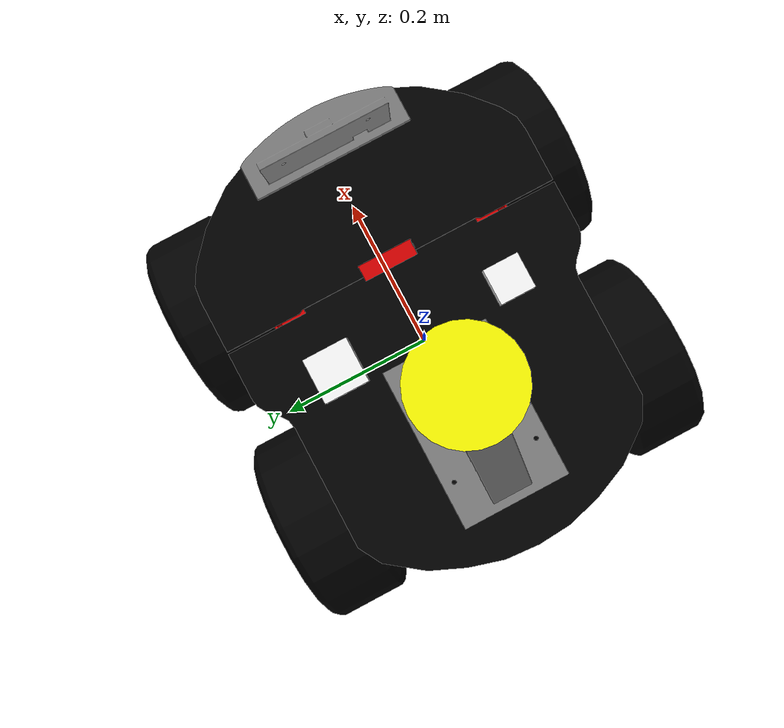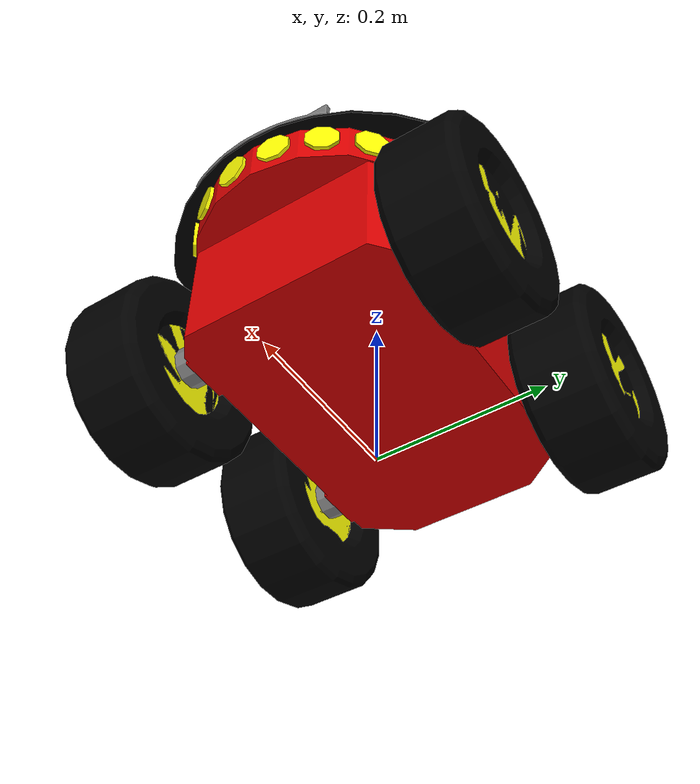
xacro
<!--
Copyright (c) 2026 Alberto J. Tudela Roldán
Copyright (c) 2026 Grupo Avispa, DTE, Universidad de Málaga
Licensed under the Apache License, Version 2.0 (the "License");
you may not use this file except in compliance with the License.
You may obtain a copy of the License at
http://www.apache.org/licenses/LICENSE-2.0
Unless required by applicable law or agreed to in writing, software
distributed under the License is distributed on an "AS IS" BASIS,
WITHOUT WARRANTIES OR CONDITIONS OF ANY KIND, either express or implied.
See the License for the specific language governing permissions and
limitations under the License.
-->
<?xml version="1.0" ?>

<robot name="Pioneer3AT"
  xmlns:xacro="http://ros.org/wiki/xacro">

  <!-- Calibration data -->
  <xacro:include filename="pioneer3at_calibration.xacro" />

  <!-- Robot body definition -->
  <xacro:include filename="pioneer3at_body.xacro"/>

  <!-- Instantiate front wheels -->
  <xacro:p3at_front suffix="left" reflect="1"/>
  <xacro:p3at_front suffix="right" reflect="-1"/>

  <!-- Instantiate back wheels -->
  <xacro:p3at_back suffix="left" reflect="1"/>
  <xacro:p3at_back suffix="right" reflect="-1"/>

</robot>

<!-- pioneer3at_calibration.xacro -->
<robot name="Pioneer3AT"
  xmlns:xacro="http://ros.org/wiki/xacro">

  <!-- Xacro properties -->
  <xacro:property name="base_link_height" value="0.177" />

  <!-- Calibration params -->
  <!-- Footprint -->
  <xacro:property name="footprint_trans_x" value="0.0" />
  <xacro:property name="footprint_trans_y" value="0.0" />
  <xacro:property name="footprint_trans_z" value="0.0" />
  <xacro:property name="footprint_rot_x" value="0.0" />
  <xacro:property name="footprint_rot_y" value="0.0" />
  <xacro:property name="footprint_rot_z" value="0.0" />

  <!-- Top laser (base_laser_link) -->
  <xacro:property name="top_laser_trans_x" value="0.0" />
  <xacro:property name="top_laser_trans_y" value="0.0" />
  <xacro:property name="top_laser_trans_z" value="0.23" />
  <xacro:property name="top_laser_rot_x" value="0.0" />
  <xacro:property name="top_laser_rot_y" value="0.0" />
  <xacro:property name="top_laser_rot_z" value="0.0" />

  <!-- Intel RealSense D455 relative to the body frame -->
  <xacro:property name="realsense_trans_x" value="0.225" />
  <xacro:property name="realsense_trans_y" value="0.0" />
  <xacro:property name="realsense_trans_z" value="0.45" />
  <xacro:property name="realsense_rot_x" value="0.0" />
  <xacro:property name="realsense_rot_y" value="0.0" />
  <xacro:property name="realsense_rot_z" value="0.0" />

  <!-- Front Sonar -->
  <xacro:property name="front_sonar_trans_x" value="0.193" />
  <xacro:property name="front_sonar_trans_y" value="0.0" />
  <xacro:property name="front_sonar_trans_z" value="0.25" />
  <xacro:property name="front_sonar_rot_x" value="0.0" />
  <xacro:property name="front_sonar_rot_y" value="0.0" />
  <xacro:property name="front_sonar_rot_z" value="0.0" />

  <!-- Back Sonar -->
  <xacro:property name="back_sonar_trans_x" value="-0.187" />
  <xacro:property name="back_sonar_trans_y" value="0.0" />
  <xacro:property name="back_sonar_trans_z" value="0.247" />
  <xacro:property name="back_sonar_rot_x" value="0.0" />
  <xacro:property name="back_sonar_rot_y" value="0.0" />
  <xacro:property name="back_sonar_rot_z" value="0.0" />

  <!-- Front Axles -->
  <xacro:property name="front_left_axle_trans_x" value="0.135" />
  <xacro:property name="front_left_axle_trans_y" value="0.156" />
  <xacro:property name="front_left_axle_trans_z" value="0.111" />
  <xacro:property name="front_right_axle_trans_x" value="0.135" />
  <xacro:property name="front_right_axle_trans_y" value="-0.156" />
  <xacro:property name="front_right_axle_trans_z" value="0.111" />

  <!-- Back Axles -->
  <xacro:property name="back_left_axle_trans_x" value="-0.134" />
  <xacro:property name="back_left_axle_trans_y" value="0.156" />
  <xacro:property name="back_left_axle_trans_z" value="0.111" />
  <xacro:property name="back_right_axle_trans_x" value="-0.134" />
  <xacro:property name="back_right_axle_trans_y" value="-0.156" />
  <xacro:property name="back_right_axle_trans_z" value="0.111" />

  <!-- Top Laser Support (lidar support) -->
  <xacro:property name="top_laser_support_trans_x" value="-0.07" />
  <xacro:property name="top_laser_support_trans_y" value="0.0" />
  <xacro:property name="top_laser_support_trans_z" value="0.0" />
  <xacro:property name="top_laser_support_rot_x" value="0.0" />
  <xacro:property name="top_laser_support_rot_y" value="0.0" />
  <xacro:property name="top_laser_support_rot_z" value="0.0" />

  <!-- Top RealSense Support -->
  <xacro:property name="top_realsense_trans_x" value="0.225" />
  <xacro:property name="top_realsense_trans_y" value="0.0" />
  <xacro:property name="top_realsense_trans_z" value="0.0" />
  <xacro:property name="top_realsense_rot_x" value="0.0" />
  <xacro:property name="top_realsense_rot_y" value="0.0" />
  <xacro:property name="top_realsense_rot_z" value="0.0" />

  <!-- GPS -->
  <xacro:property name="gps_trans_x" value="0.0" />
  <xacro:property name="gps_trans_y" value="0.10" />
  <xacro:property name="gps_trans_z" value="0.0" />
  <xacro:property name="gps_rot_x" value="0.0" />
  <xacro:property name="gps_rot_y" value="0.0" />
  <xacro:property name="gps_rot_z" value="0.0" />

  <!-- IMU -->
  <xacro:property name="imu_trans_x" value="0.0" />
  <xacro:property name="imu_trans_y" value="-0.10" />
  <xacro:property name="imu_trans_z" value="0.0" />
  <xacro:property name="imu_rot_x" value="0.0" />
  <xacro:property name="imu_rot_y" value="0.0" />
  <xacro:property name="imu_rot_z" value="0.0" />

</robot>

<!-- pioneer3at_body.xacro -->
<robot name="Pioneer-2AT"
  xmlns:xacro="http://ros.org/wiki/xacro">

  <!-- Materials -->
  <material name="red">
    <color rgba="0.851 0.0 0.0 1.0"/>
  </material>
  <material name="white">
    <color rgba="1 1 1 1"/>
  </material>
  <material name="black">
    <color rgba="0 0 0 1"/>
  </material>
  <material name="yellow">
    <color rgba="1 1 0 1"/>
  </material>
  <material name="grey">
    <color rgba="0.5 0.5 0.5 1.0"/>
  </material>

  <!-- Chassis -->
  <link name="base_link">
    <inertial>
      <mass value="10.0"/>
      <origin xyz="0 0 ${base_link_height}"/>
      <inertia ixx="0.3338" ixy="0.0" ixz="0.0" iyy="0.4783" iyz="0.0" izz="0.3338"/>
    </inertial>
    <visual name="base_visual">
      <origin xyz="0 0 ${base_link_height}" rpy="0 0 0"/>
      <geometry name="pioneer_geom">
        <mesh filename="package://pioneer_description/meshes/chassis.stl" scale="0.1 0.1 0.1"/>
      </geometry>
      <material name="red"/>
    </visual>
    <collision>
      <origin xyz="0 0 ${base_link_height}" rpy="0 0 0"/>
      <geometry>
        <mesh filename="package://pioneer_description/meshes/chassis.stl" scale="0.1 0.1 0.1"/>
      </geometry>
    </collision>
  </link>

  <!-- Base footprint: a fictional link that is on the floor plane, needed for move_base -->
  <link name="base_footprint"/>

  <!-- Base link to base footprint -->
  <joint name="base_footprint_joint" type="fixed">
    <origin xyz="${footprint_trans_x} ${footprint_trans_y} ${footprint_trans_z}" rpy="${footprint_rot_x} ${footprint_rot_y} ${footprint_rot_z}" />
    <parent link="base_link"/>
    <child link="base_footprint" />
  </joint>

  <!-- Top -->
  <link name="top_plate">
    <inertial>
      <mass value="0.1"/>
      <origin xyz="-0.025 0 -0.223"/>
      <inertia ixx="0.0001" ixy="0.0" ixz="0.0" iyy="0.0001" iyz="0.0" izz="0.0001"/>
    </inertial>
    <visual name="base_visual">
      <origin xyz="0 0 0" rpy="0 0 0"/>
      <geometry name="pioneer_geom">
        <mesh filename="package://pioneer_description/meshes/top.stl" scale="0.1 0.1 0.1"/>
      </geometry>
      <material name="black"/>
    </visual>
  </link>

  <joint name="base_top_joint" type="fixed">
    <origin xyz="0.003 0 0.274" rpy="0 0 0"/>
    <parent link="base_link"/>
    <child link="top_plate"/>
  </joint>

  <!-- Lidar Support-->
  <link name = "lidar_support">
    <visual name="base_visual">
      <origin xyz="0 0 0.17" rpy="1.57 0 0"/>
      <geometry name="pioneer_geom">
        <mesh filename="package://pioneer_description/meshes/lidar_support.stl" scale="0.001 0.001 0.001"/>
      </geometry>
      <material name="grey"/>
    </visual>
  </link>

  <joint name="top_laser_joint" type="fixed">
    <origin xyz="${top_laser_support_trans_x} ${top_laser_support_trans_y} ${top_laser_support_trans_z}" rpy="${top_laser_support_rot_x} ${top_laser_support_rot_y} ${top_laser_support_rot_z}"/>
    <parent link="top_plate"/>
    <child link="lidar_support"/>
  </joint>

  <!-- BaseLaserLink-->
  <link name="base_laser_link">
    <visual>
      <origin xyz="0 0 0" rpy="0 0 0"/>
      <geometry>
        <cylinder length="0.1" radius="0.05"/>
      </geometry>
      <material name="yellow"/>
    </visual>
  </link>

  <joint name="base_laser_laser_joint" type="fixed">
    <origin xyz="${top_laser_trans_x} ${top_laser_trans_y} ${top_laser_trans_z}" rpy="${top_laser_rot_x} ${top_laser_rot_y} ${top_laser_rot_z}"/>
    <parent link="lidar_support"/>
    <child link="base_laser_link"/>
  </joint>

  <!-- Intel Realsense Support-->
  <link name = "realsense_support_link">
    <visual name="base_visual">
      <origin xyz="-0.147 0 0" rpy="0 0 -1.57"/>
      <geometry name="pioneer_geom">
        <mesh filename="package://pioneer_description/meshes/realsense_support.stl" scale="0.001 0.001 0.001"/>
      </geometry>
      <material name="grey"/>
    </visual>
  </link>

  <joint name="top_realsense_joint" type="fixed">
    <origin xyz="${top_realsense_trans_x} ${top_realsense_trans_y} ${top_realsense_trans_z}" rpy="${top_realsense_rot_x} ${top_realsense_rot_y} ${top_realsense_rot_z}"/>
    <parent link="top_plate"/>
    <child link="realsense_support_link"/>
  </joint>

  <!-- Front + Back Sonar -->
  <link name="front_sonar">
    <inertial>
      <mass value="0.1"/>
      <origin xyz="0 0 0"/>
      <inertia ixx="1.0" ixy="0.0" ixz="0.0" iyy="1.0" iyz="0.0" izz="1.0"/>
    </inertial>
    <visual name="base_visual">
      <origin xyz="0 0 0" rpy="0 0 0"/>
      <geometry name="pioneer_geom">
        <mesh filename="package://pioneer_description/meshes/front_sonar.stl" scale="0.1 0.1 0.1"/>
      </geometry>
      <material name="yellow"/>
    </visual>
  </link>

  <joint name="base_front_joint" type="fixed">
    <origin xyz="${front_sonar_trans_x} ${front_sonar_trans_y} ${front_sonar_trans_z}" rpy="0 0 0"/>
    <parent link="base_link"/>
    <child link="front_sonar"/>
  </joint>

  <link name="back_sonar">
    <inertial>
      <mass value="0.1"/>
      <origin xyz="0 0 0"/>
      <inertia ixx="1.0" ixy="0.0" ixz="0.0" iyy="1.0" iyz="0.0" izz="1.0"/>
    </inertial>
    <visual name="base_visual">
      <origin xyz="0 0 0" rpy="0 0 0"/>
      <geometry name="pioneer_geom">
        <mesh filename="package://pioneer_description/meshes/back_sonar.stl" scale="0.1 0.1 0.1"/>
      </geometry>
      <material name="yellow"/>
    </visual>
  </link>

  <joint name="base_back_joint" type="fixed">
    <origin xyz="${back_sonar_trans_x} ${back_sonar_trans_y} ${back_sonar_trans_z}" rpy="0 0 0"/>
    <parent link="base_link"/>
    <child link="back_sonar"/>
  </joint>

  <!-- GPS -->
  <link name="gps_link">
    <inertial>
      <mass value="0.05"/>
      <origin xyz="0 0 0"/>
      <inertia ixx="0.001" ixy="0.0" ixz="0.0" iyy="0.001" iyz="0.0" izz="0.001"/>
    </inertial>
    <visual name="gps_visual">
      <origin xyz="0 0 0" rpy="0 0 0"/>
      <geometry>
        <box size="0.05 0.05 0.05"/>
      </geometry>
      <material name="white"/>
    </visual>
  </link>

  <joint name="base_gps_joint" type="fixed">
    <origin xyz="${gps_trans_x} ${gps_trans_y} ${gps_trans_z}" rpy="${gps_rot_x} ${gps_rot_y} ${gps_rot_z}"/>
    <parent link="top_plate"/>
    <child link="gps_link"/>
  </joint>

  <!-- IMU -->
  <link name="imu_link">
    <inertial>
      <mass value="0.05"/>
      <origin xyz="0 0 0"/>
      <inertia ixx="0.001" ixy="0.0" ixz="0.0" iyy="0.001" iyz="0.0" izz="0.001"/>
    </inertial>
    <visual name="imu_visual">
      <origin xyz="0 0 0" rpy="0 0 0"/>
      <geometry>
        <box size="0.04 0.04 0.04"/>
      </geometry>
      <material name="white"/>
    </visual>
  </link>

  <joint name="base_imu_joint" type="fixed">
    <origin xyz="${imu_trans_x} ${imu_trans_y} ${imu_trans_z}" rpy="${imu_rot_x} ${imu_rot_y} ${imu_rot_z}"/>
    <parent link="top_plate"/>
    <child link="imu_link"/>
  </joint>

  <!-- Front Axles + Wheels + Hubcaps -->
  <xacro:macro name="p3at_front" params="suffix reflect">
    <link name="p3at_front_${suffix}_axle">
      <inertial>
        <mass value="0.1"/>
        <origin xyz="0 0 0"/>
        <inertia ixx="1.0" ixy="0.0" ixz="0.0" iyy="1.0" iyz="0.0" izz="1.0"/>
      </inertial>
      <visual name="base_visual">
        <origin xyz="0 0 0" rpy="0 0 0"/>
        <geometry name="pioneer_geom">
          <mesh filename="package://pioneer_description/meshes/axle.stl" scale="0.1 0.1 0.1"/>
        </geometry>
        <material name="grey"/>
      </visual>
    </link>

    <joint name="base_front_${suffix}_axle_joint" type="fixed">
      <origin xyz="0.135 ${reflect*0.156} ${front_left_axle_trans_z}" rpy="0 0 0"/>
      <parent link="base_link"/>
      <child link="p3at_front_${suffix}_axle"/>
    </joint>

    <link name="p3at_front_${suffix}_hub">
      <inertial>
        <mass value="0.1"/>
        <origin xyz="0 0 0"/>
        <inertia ixx="1.0" ixy="0.0" ixz="0.0" iyy="1.0" iyz="0.0" izz="1.0"/>
      </inertial>
      <visual name="base_visual">
        <origin xyz="0 0 0" rpy="0 0 0"/>
        <geometry name="pioneer_geom">
          <mesh filename="package://pioneer_description/meshes/${suffix}_hubcap.stl" scale="0.1 0.1 0.1"/>
        </geometry>
        <material name="yellow"/>
      </visual>
    </link>

    <joint name="base_front_${suffix}_hub_joint" type="fixed">
      <origin xyz="0 ${reflect*0.041} 0" rpy="0 0 0"/>
      <parent link="p3at_front_${suffix}_axle"/>
      <child link="p3at_front_${suffix}_hub"/>
    </joint>

    <link name="p3at_front_${suffix}_wheel">
      <inertial>
        <mass value="0.5"/>
        <origin xyz="0 0 0"/>
        <inertia ixx="0.012411765597" ixy="0" ixz="0" iyy="0.015218160428" iyz="0" izz="0.011763977943"/>
      </inertial>
      <visual name="base_visual">
        <origin xyz="0 0 0" rpy="0 0 0"/>
        <geometry name="pioneer_geom">
          <mesh filename="package://pioneer_description/meshes/wheel.stl" scale="0.1 0.1 0.1"/>
        </geometry>
        <material name="black"/>
      </visual>
      <collision>
        <origin xyz="0 0 0" rpy="${-3.1415927/2} 0 0"/>
        <geometry>
          <cylinder radius="0.111" length="0.075"/>
        </geometry>
      </collision>
    </link>

    <joint name="p3at_front_${suffix}_wheel_joint" type="continuous">
      <axis xyz="0 1 0"/>
      <anchor xyz="0 0 0"/>
      <limit effort="100" velocity="100" />
      <joint_properties damping="0.7"/>
      <origin xyz="0 0 0" rpy="0 0 0"/>
      <parent link="p3at_front_${suffix}_hub"/>
      <child link="p3at_front_${suffix}_wheel"/>
    </joint>
  </xacro:macro>

  <!-- Back Axles + Wheels + Hubcaps -->
  <xacro:macro name="p3at_back" params="suffix reflect">
    <link name="p3at_back_${suffix}_axle">
      <inertial>
        <mass value="0.1"/>
        <origin xyz="0 0 0"/>
        <inertia ixx="1.0" ixy="0.0" ixz="0.0" iyy="1.0" iyz="0.0" izz="1.0"/>
      </inertial>
      <visual name="base_visual">
        <origin xyz="0 0 0" rpy="0 0 0"/>
        <geometry name="pioneer_geom">
          <mesh filename="package://pioneer_description/meshes/axle.stl" scale="0.1 0.1 0.1"/>
        </geometry>
        <material name="grey"/>
      </visual>
      <collision>
        <origin xyz="0 0 0" rpy="0 0 0"/>
        <geometry>
          <mesh filename="package://pioneer_description/meshes/axle.stl" scale="0.1 0.1 0.1"/>
        </geometry>
      </collision>
    </link>
    <joint name="bp3at_back_${suffix}_axle_joint" type="fixed">
      <origin xyz="-0.134 ${reflect*0.156} ${back_left_axle_trans_z}" rpy="0 0 0"/>
      <parent link="base_link"/>
      <child link="p3at_back_${suffix}_axle"/>
    </joint>

    <link name="p3at_back_${suffix}_hub">
      <inertial>
        <mass value="0.1"/>
        <origin xyz="0 0 0"/>
        <inertia ixx="1.0" ixy="0.0" ixz="0.0" iyy="1.0" iyz="0.0" izz="1.0"/>
      </inertial>
      <visual name="base_visual">
        <origin xyz="0 0 0" rpy="0 0 0"/>
        <geometry name="pioneer_geom">
          <mesh filename="package://pioneer_description/meshes/${suffix}_hubcap.stl" scale="0.1 0.1 0.1"/>
        </geometry>
        <material name="yellow"/>
      </visual>
      <collision>
        <origin xyz="0 0 0" rpy="0 0 0"/>
        <geometry>
          <mesh filename="package://pioneer_description/meshes/${suffix}_hubcap.stl" scale="0.1 0.1 0.1"/>
        </geometry>
      </collision>
    </link>

    <joint name="p3at_back_${suffix}_hub_joint" type="fixed">
      <origin xyz="-0 ${reflect*0.041} 0" rpy="0 0 0"/>
      <parent link="p3at_back_${suffix}_axle"/>
      <child link="p3at_back_${suffix}_hub"/>
    </joint>

    <link name="p3at_back_${suffix}_wheel">
      <inertial>
        <mass value="0.5"/>
        <origin xyz="0 0 0"/>
        <inertia ixx="0.012411765597" ixy="0" ixz="0" iyy="0.015218160428" iyz="0" izz="0.011763977943"/>
      </inertial>
      <visual name="base_visual">
        <origin xyz="0 0 0" rpy="0 0 0"/>
        <geometry name="pioneer_geom">
          <mesh filename="package://pioneer_description/meshes/wheel.stl" scale="0.1 0.1 0.1"/>
        </geometry>
        <material name="black"/>
      </visual>
      <collision>
        <origin xyz="0 0 0" rpy="${-3.1415927/2} 0 0"/>
        <geometry>
          <cylinder radius="0.111" length="0.075"/>
        </geometry>
      </collision>
    </link>

    <joint name="p3at_back_${suffix}_wheel_joint" type="continuous">
      <axis xyz="0 1 0"/>
      <anchor xyz="0 0 0"/>
      <limit effort="100" velocity="100" />
      <joint_properties damping="0.7"/>
      <origin xyz="0 0 0" rpy="0 0 0"/>
      <parent link="p3at_back_${suffix}_hub"/>
      <child link="p3at_back_${suffix}_wheel"/>
    </joint>
  </xacro:macro>
</robot>
